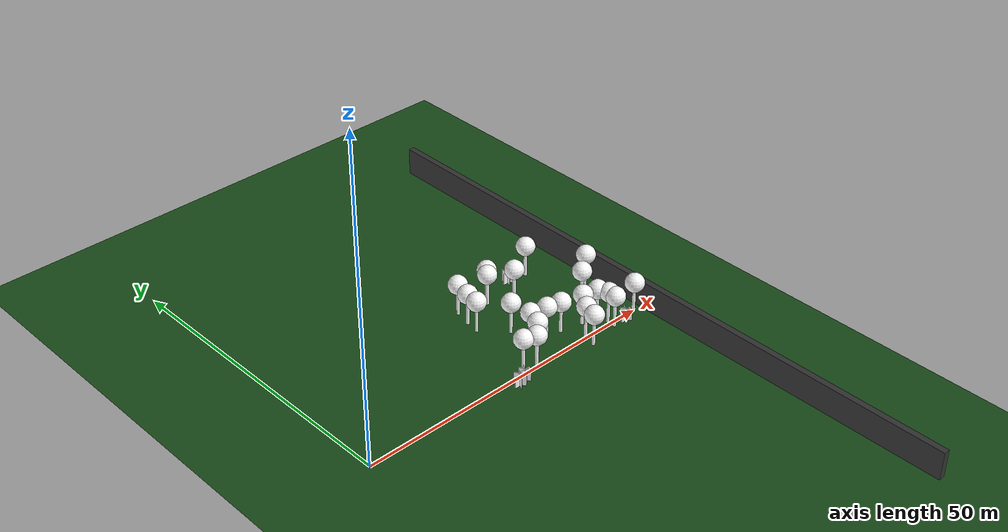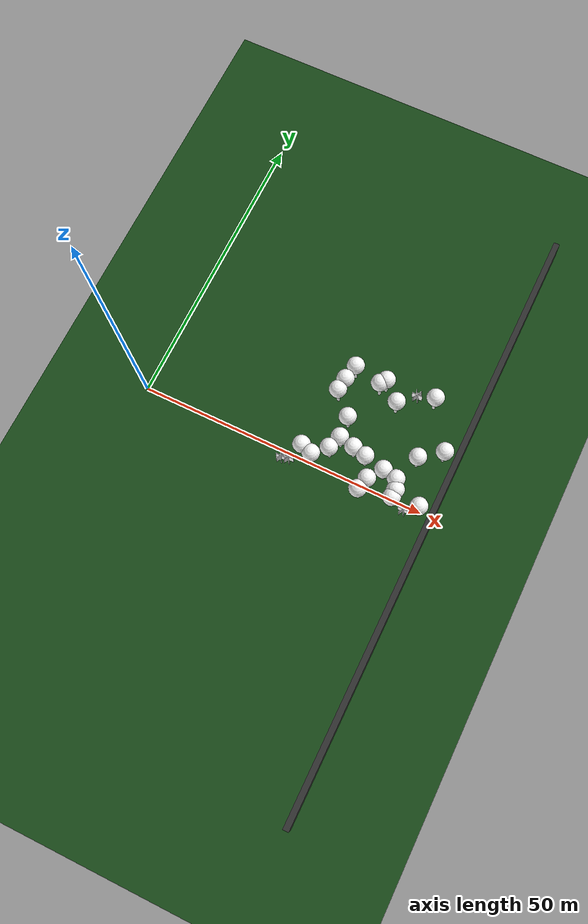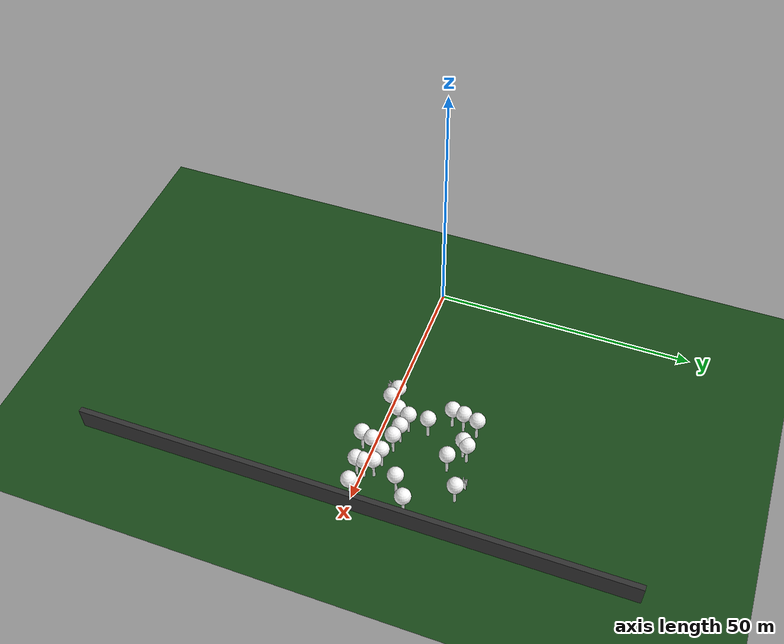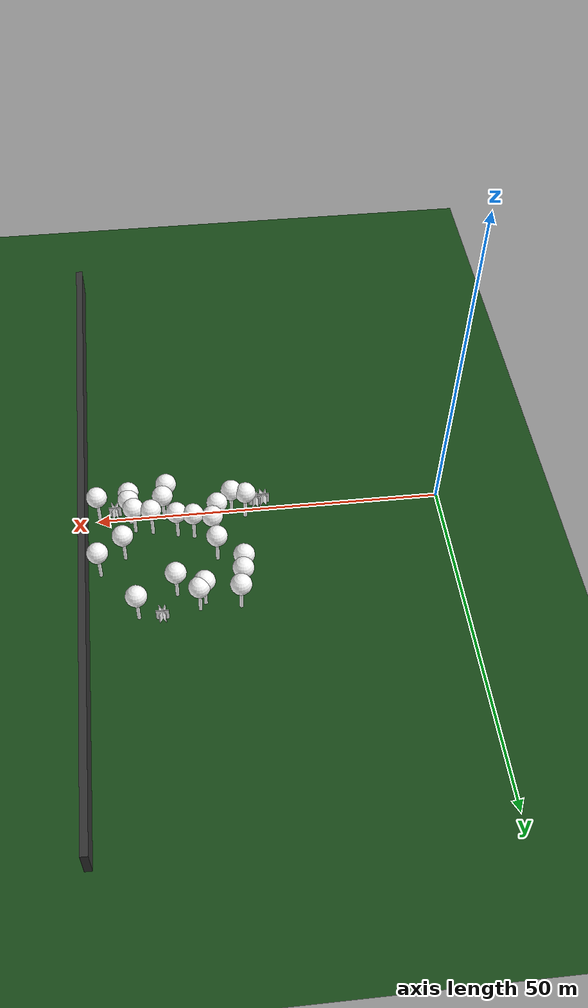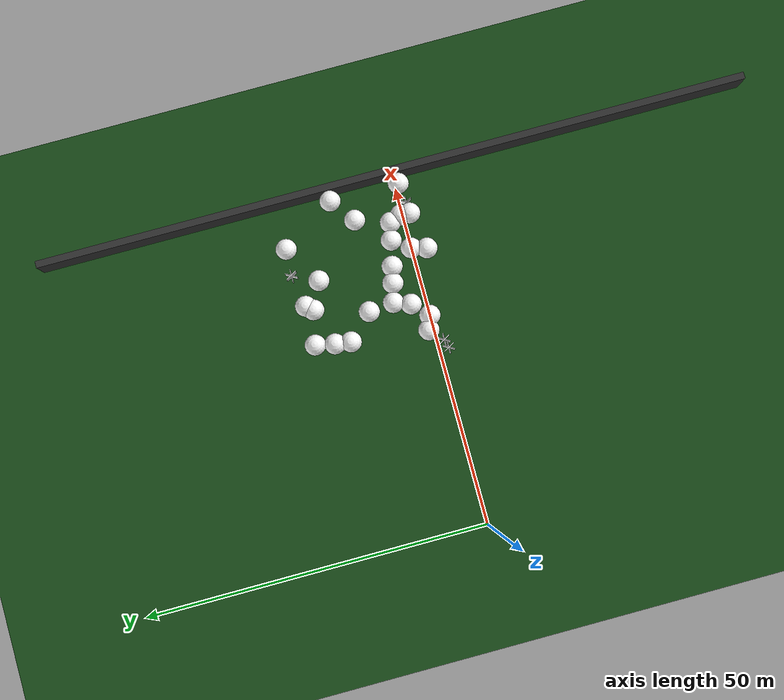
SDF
<sdf version="1.8">
 <world name="forest_world">
  <model name="fire_4">
   <pose>25.66 -1.31 1.00 0 0 0.00</pose>
   <static>true</static>
   <link name="fire_link">
    <visual name="fire_4_fire_main_0">
     <geometry><box><size>1.80 0.10 2.00</size></box></geometry>
     <material>
      <ambient>0.7 0.35 0.0 1</ambient>
      <diffuse>1 1 1 1</diffuse>
      <specular>0 0 0 1</specular>
      <emissive>0 0 0 1</emissive>
      <pbr>
       <metal><albedo_map>textures/fire.png</albedo_map><metalness>0.0</metalness><roughness>0.6</roughness></metal>
      </pbr>
     </material>
     <transparency>0.0</transparency>
     <cast_shadows>false</cast_shadows>
    </visual>
    <visual name="fire_4_fire_60_1">
     <pose>0.00 0.00 0.10 0 0 1.05</pose>
     <geometry><box><size>1.80 0.10 2.00</size></box></geometry>
     <material>
      <ambient>0.7 0.35 0.0 1</ambient>
      <diffuse>1 1 1 1</diffuse>
      <specular>0 0 0 1</specular>
      <emissive>0 0 0 1</emissive>
      <pbr>
       <metal><albedo_map>textures/fire.png</albedo_map><metalness>0.0</metalness><roughness>0.6</roughness></metal>
      </pbr>
     </material>
     <transparency>0.0</transparency>
     <cast_shadows>false</cast_shadows>
    </visual>
    <visual name="fire_4_fire_120_2">
     <pose>0.00 0.00 0.20 0 0 2.09</pose>
     <geometry><box><size>1.80 0.10 2.00</size></box></geometry>
     <material>
      <ambient>0.7 0.35 0.0 1</ambient>
      <diffuse>1 1 1 1</diffuse>
      <specular>0 0 0 1</specular>
      <emissive>0 0 0 1</emissive>
      <pbr>
       <metal><albedo_map>textures/fire.png</albedo_map><metalness>0.0</metalness><roughness>0.6</roughness></metal>
      </pbr>
     </material>
     <transparency>0.0</transparency>
     <cast_shadows>false</cast_shadows>
    </visual>
    <light type="point" name="fire_4_light_0">
     <pose>0.40 0.00 0.50 0 0 0</pose>
     <diffuse>1.0 0.7 0.3 1</diffuse>
     <specular>1.0 0.8 0.3 1</specular>
     <intensity>2</intensity>
     <attenuation>
      <range>2</range>
      <constant>0.1</constant>
      <linear>0.05</linear>
      <quadratic>0.02</quadratic>
     </attenuation>
     <cast_shadows>false</cast_shadows>
    </light>
    <light type="point" name="fire_4_light_1">
     <pose>-0.20 0.35 0.50 0 0 0</pose>
     <diffuse>1.0 0.7 0.3 1</diffuse>
     <specular>1.0 0.8 0.3 1</specular>
     <intensity>2</intensity>
     <attenuation>
      <range>2</range>
      <constant>0.1</constant>
      <linear>0.05</linear>
      <quadratic>0.02</quadratic>
     </attenuation>
     <cast_shadows>false</cast_shadows>
    </light>
    <light type="point" name="fire_4_light_2">
     <pose>-0.20 -0.35 0.50 0 0 0</pose>
     <diffuse>1.0 0.7 0.3 1</diffuse>
     <specular>1.0 0.8 0.3 1</specular>
     <intensity>2</intensity>
     <attenuation>
      <range>2</range>
      <constant>0.1</constant>
      <linear>0.05</linear>
      <quadratic>0.02</quadratic>
     </attenuation>
     <cast_shadows>false</cast_shadows>
    </light>
   </link>
   <plugin filename="libignition-gazebo-pose-publisher-system.so" name="ignition::gazebo::systems::PosePublisher">
    <frame_id>world</frame_id>
    <publish_link_pose>true</publish_link_pose>
    <use_pose_vector_msg>true</use_pose_vector_msg>
    <static_publisher>true</static_publisher>
    <static_update_frequency>1</static_update_frequency>
   </plugin>
  </model>
  <model name="fire_16">
   <pose>41.40 17.68 1.00 0 0 0.00</pose>
   <static>true</static>
   <link name="fire_link">
    <visual name="fire_16_fire_main_0">
     <geometry><box><size>1.80 0.10 2.00</size></box></geometry>
     <material>
      <ambient>0.7 0.35 0.0 1</ambient>
      <diffuse>1 1 1 1</diffuse>
      <specular>0 0 0 1</specular>
      <emissive>0 0 0 1</emissive>
      <pbr>
       <metal><albedo_map>textures/fire.png</albedo_map><metalness>0.0</metalness><roughness>0.6</roughness></metal>
      </pbr>
     </material>
     <transparency>0.0</transparency>
     <cast_shadows>false</cast_shadows>
    </visual>
    <visual name="fire_16_fire_60_1">
     <pose>0.00 0.00 0.10 0 0 1.05</pose>
     <geometry><box><size>1.80 0.10 2.00</size></box></geometry>
     <material>
      <ambient>0.7 0.35 0.0 1</ambient>
      <diffuse>1 1 1 1</diffuse>
      <specular>0 0 0 1</specular>
      <emissive>0 0 0 1</emissive>
      <pbr>
       <metal><albedo_map>textures/fire.png</albedo_map><metalness>0.0</metalness><roughness>0.6</roughness></metal>
      </pbr>
     </material>
     <transparency>0.0</transparency>
     <cast_shadows>false</cast_shadows>
    </visual>
    <visual name="fire_16_fire_120_2">
     <pose>0.00 0.00 0.20 0 0 2.09</pose>
     <geometry><box><size>1.80 0.10 2.00</size></box></geometry>
     <material>
      <ambient>0.7 0.35 0.0 1</ambient>
      <diffuse>1 1 1 1</diffuse>
      <specular>0 0 0 1</specular>
      <emissive>0 0 0 1</emissive>
      <pbr>
       <metal><albedo_map>textures/fire.png</albedo_map><metalness>0.0</metalness><roughness>0.6</roughness></metal>
      </pbr>
     </material>
     <transparency>0.0</transparency>
     <cast_shadows>false</cast_shadows>
    </visual>
    <light type="point" name="fire_16_light_0">
     <pose>0.40 0.00 0.50 0 0 0</pose>
     <diffuse>1.0 0.7 0.3 1</diffuse>
     <specular>1.0 0.8 0.3 1</specular>
     <intensity>2</intensity>
     <attenuation>
      <range>2</range>
      <constant>0.1</constant>
      <linear>0.05</linear>
      <quadratic>0.02</quadratic>
     </attenuation>
     <cast_shadows>false</cast_shadows>
    </light>
    <light type="point" name="fire_16_light_1">
     <pose>-0.20 0.35 0.50 0 0 0</pose>
     <diffuse>1.0 0.7 0.3 1</diffuse>
     <specular>1.0 0.8 0.3 1</specular>
     <intensity>2</intensity>
     <attenuation>
      <range>2</range>
      <constant>0.1</constant>
      <linear>0.05</linear>
      <quadratic>0.02</quadratic>
     </attenuation>
     <cast_shadows>false</cast_shadows>
    </light>
    <light type="point" name="fire_16_light_2">
     <pose>-0.20 -0.35 0.50 0 0 0</pose>
     <diffuse>1.0 0.7 0.3 1</diffuse>
     <specular>1.0 0.8 0.3 1</specular>
     <intensity>2</intensity>
     <attenuation>
      <range>2</range>
      <constant>0.1</constant>
      <linear>0.05</linear>
      <quadratic>0.02</quadratic>
     </attenuation>
     <cast_shadows>false</cast_shadows>
    </light>
   </link>
   <plugin filename="libignition-gazebo-pose-publisher-system.so" name="ignition::gazebo::systems::PosePublisher">
    <frame_id>world</frame_id>
    <publish_link_pose>true</publish_link_pose>
    <use_pose_vector_msg>true</use_pose_vector_msg>
    <static_publisher>true</static_publisher>
    <static_update_frequency>1</static_update_frequency>
   </plugin>
  </model>
  <model name="fire_36">
   <pose>47.32 -0.93 1.00 0 0 0.00</pose>
   <static>true</static>
   <link name="fire_link">
    <visual name="fire_36_fire_main_0">
     <geometry><box><size>1.80 0.10 2.00</size></box></geometry>
     <material>
      <ambient>0.7 0.35 0.0 1</ambient>
      <diffuse>1 1 1 1</diffuse>
      <specular>0 0 0 1</specular>
      <emissive>0 0 0 1</emissive>
      <pbr>
       <metal><albedo_map>textures/fire.png</albedo_map><metalness>0.0</metalness><roughness>0.6</roughness></metal>
      </pbr>
     </material>
     <transparency>0.0</transparency>
     <cast_shadows>false</cast_shadows>
    </visual>
    <visual name="fire_36_fire_60_1">
     <pose>0.00 0.00 0.10 0 0 1.05</pose>
     <geometry><box><size>1.80 0.10 2.00</size></box></geometry>
     <material>
      <ambient>0.7 0.35 0.0 1</ambient>
      <diffuse>1 1 1 1</diffuse>
      <specular>0 0 0 1</specular>
      <emissive>0 0 0 1</emissive>
      <pbr>
       <metal><albedo_map>textures/fire.png</albedo_map><metalness>0.0</metalness><roughness>0.6</roughness></metal>
      </pbr>
     </material>
     <transparency>0.0</transparency>
     <cast_shadows>false</cast_shadows>
    </visual>
    <visual name="fire_36_fire_120_2">
     <pose>0.00 0.00 0.20 0 0 2.09</pose>
     <geometry><box><size>1.80 0.10 2.00</size></box></geometry>
     <material>
      <ambient>0.7 0.35 0.0 1</ambient>
      <diffuse>1 1 1 1</diffuse>
      <specular>0 0 0 1</specular>
      <emissive>0 0 0 1</emissive>
      <pbr>
       <metal><albedo_map>textures/fire.png</albedo_map><metalness>0.0</metalness><roughness>0.6</roughness></metal>
      </pbr>
     </material>
     <transparency>0.0</transparency>
     <cast_shadows>false</cast_shadows>
    </visual>
    <light type="point" name="fire_36_light_0">
     <pose>0.40 0.00 0.50 0 0 0</pose>
     <diffuse>1.0 0.7 0.3 1</diffuse>
     <specular>1.0 0.8 0.3 1</specular>
     <intensity>2</intensity>
     <attenuation>
      <range>2</range>
      <constant>0.1</constant>
      <linear>0.05</linear>
      <quadratic>0.02</quadratic>
     </attenuation>
     <cast_shadows>false</cast_shadows>
    </light>
    <light type="point" name="fire_36_light_1">
     <pose>-0.20 0.35 0.50 0 0 0</pose>
     <diffuse>1.0 0.7 0.3 1</diffuse>
     <specular>1.0 0.8 0.3 1</specular>
     <intensity>2</intensity>
     <attenuation>
      <range>2</range>
      <constant>0.1</constant>
      <linear>0.05</linear>
      <quadratic>0.02</quadratic>
     </attenuation>
     <cast_shadows>false</cast_shadows>
    </light>
    <light type="point" name="fire_36_light_2">
     <pose>-0.20 -0.35 0.50 0 0 0</pose>
     <diffuse>1.0 0.7 0.3 1</diffuse>
     <specular>1.0 0.8 0.3 1</specular>
     <intensity>2</intensity>
     <attenuation>
      <range>2</range>
      <constant>0.1</constant>
      <linear>0.05</linear>
      <quadratic>0.02</quadratic>
     </attenuation>
     <cast_shadows>false</cast_shadows>
    </light>
   </link>
   <plugin filename="libignition-gazebo-pose-publisher-system.so" name="ignition::gazebo::systems::PosePublisher">
    <frame_id>world</frame_id>
    <publish_link_pose>true</publish_link_pose>
    <use_pose_vector_msg>true</use_pose_vector_msg>
    <static_publisher>true</static_publisher>
    <static_update_frequency>1</static_update_frequency>
   </plugin>
  </model>
  <model name="fire_50">
   <pose>26.87 -0.99 1.00 0 0 0.00</pose>
   <static>true</static>
   <link name="fire_link">
    <visual name="fire_50_fire_main_0">
     <geometry><box><size>1.80 0.10 2.00</size></box></geometry>
     <material>
      <ambient>0.7 0.35 0.0 1</ambient>
      <diffuse>1 1 1 1</diffuse>
      <specular>0 0 0 1</specular>
      <emissive>0 0 0 1</emissive>
      <pbr>
       <metal><albedo_map>textures/fire.png</albedo_map><metalness>0.0</metalness><roughness>0.6</roughness></metal>
      </pbr>
     </material>
     <transparency>0.0</transparency>
     <cast_shadows>false</cast_shadows>
    </visual>
    <visual name="fire_50_fire_60_1">
     <pose>0.00 0.00 0.10 0 0 1.05</pose>
     <geometry><box><size>1.80 0.10 2.00</size></box></geometry>
     <material>
      <ambient>0.7 0.35 0.0 1</ambient>
      <diffuse>1 1 1 1</diffuse>
      <specular>0 0 0 1</specular>
      <emissive>0 0 0 1</emissive>
      <pbr>
       <metal><albedo_map>textures/fire.png</albedo_map><metalness>0.0</metalness><roughness>0.6</roughness></metal>
      </pbr>
     </material>
     <transparency>0.0</transparency>
     <cast_shadows>false</cast_shadows>
    </visual>
    <visual name="fire_50_fire_120_2">
     <pose>0.00 0.00 0.20 0 0 2.09</pose>
     <geometry><box><size>1.80 0.10 2.00</size></box></geometry>
     <material>
      <ambient>0.7 0.35 0.0 1</ambient>
      <diffuse>1 1 1 1</diffuse>
      <specular>0 0 0 1</specular>
      <emissive>0 0 0 1</emissive>
      <pbr>
       <metal><albedo_map>textures/fire.png</albedo_map><metalness>0.0</metalness><roughness>0.6</roughness></metal>
      </pbr>
     </material>
     <transparency>0.0</transparency>
     <cast_shadows>false</cast_shadows>
    </visual>
    <light type="point" name="fire_50_light_0">
     <pose>0.40 0.00 0.50 0 0 0</pose>
     <diffuse>1.0 0.7 0.3 1</diffuse>
     <specular>1.0 0.8 0.3 1</specular>
     <intensity>2</intensity>
     <attenuation>
      <range>2</range>
      <constant>0.1</constant>
      <linear>0.05</linear>
      <quadratic>0.02</quadratic>
     </attenuation>
     <cast_shadows>false</cast_shadows>
    </light>
    <light type="point" name="fire_50_light_1">
     <pose>-0.20 0.35 0.50 0 0 0</pose>
     <diffuse>1.0 0.7 0.3 1</diffuse>
     <specular>1.0 0.8 0.3 1</specular>
     <intensity>2</intensity>
     <attenuation>
      <range>2</range>
      <constant>0.1</constant>
      <linear>0.05</linear>
      <quadratic>0.02</quadratic>
     </attenuation>
     <cast_shadows>false</cast_shadows>
    </light>
    <light type="point" name="fire_50_light_2">
     <pose>-0.20 -0.35 0.50 0 0 0</pose>
     <diffuse>1.0 0.7 0.3 1</diffuse>
     <specular>1.0 0.8 0.3 1</specular>
     <intensity>2</intensity>
     <attenuation>
      <range>2</range>
      <constant>0.1</constant>
      <linear>0.05</linear>
      <quadratic>0.02</quadratic>
     </attenuation>
     <cast_shadows>false</cast_shadows>
    </light>
   </link>
   <plugin filename="libignition-gazebo-pose-publisher-system.so" name="ignition::gazebo::systems::PosePublisher">
    <frame_id>world</frame_id>
    <publish_link_pose>true</publish_link_pose>
    <use_pose_vector_msg>true</use_pose_vector_msg>
    <static_publisher>true</static_publisher>
    <static_update_frequency>1</static_update_frequency>
   </plugin>
  </model>
  <model name="tree_simple499">
   <static>1</static>
   <link name="link">
    <pose>0 0 0.1 0 -0 0</pose>
    <collision name="collision_trunk">
     <pose>0 0 2 0 -0 0</pose>
     <geometry><cylinder><radius>0.25</radius><length>4</length></cylinder></geometry>
    </collision>
    <collision name="collision_treetop">
     <pose>0 0 5.2 0 -0 0</pose>
     <geometry><sphere><radius>1.5</radius></sphere></geometry>
    </collision>
    <visual name="trunk">
     <pose>0 0 2 0 -0 0</pose>
     <geometry><cylinder><radius>0.25</radius><length>4</length></cylinder></geometry>
     <material>
      <ambient>0.5 0.5 0.5 1</ambient>
      <diffuse>1.0 1.0 1.0 1</diffuse>
      <specular>0.0 0.0 0.0 1</specular>
      <pbr>
       <metal>
        <albedo_map>../worlds/textures/tree_simple_trunk.jpg</albedo_map>
        <metalness>0.0</metalness>
        <roughness>0.8</roughness>
       </metal>
      </pbr>
     </material>
    </visual>
    <visual name="treetop">
     <pose>0 0 5.2 0 -0 0</pose>
     <geometry><sphere><radius>1.5</radius></sphere></geometry>
     <material>
      <ambient>0.5 0.5 0.5 1</ambient>
      <diffuse>1.0 1.0 1.0 1</diffuse>
      <specular>0.0 0.0 0.0 1</specular>
      <pbr>
       <metal>
        <albedo_map>../worlds/textures/tree_simple_treetop.jpg</albedo_map>
        <metalness>0.0</metalness>
        <roughness>0.9</roughness>
       </metal>
      </pbr>
     </material>
    </visual>
   </link>
   <pose>49.5772894431 -0.301033806291 0 0 -0 0</pose>
  </model>
  <model name="tree_simple490">
   <static>1</static>
   <link name="link">
    <pose>0 0 0.1 0 -0 0</pose>
    <collision name="collision_trunk">
     <pose>0 0 2 0 -0 0</pose>
     <geometry><cylinder><radius>0.25</radius><length>4</length></cylinder></geometry>
    </collision>
    <collision name="collision_treetop">
     <pose>0 0 5.2 0 -0 0</pose>
     <geometry><sphere><radius>1.5</radius></sphere></geometry>
    </collision>
    <visual name="trunk">
     <pose>0 0 2 0 -0 0</pose>
     <geometry><cylinder><radius>0.25</radius><length>4</length></cylinder></geometry>
     <material>
      <ambient>0.5 0.5 0.5 1</ambient>
      <diffuse>1.0 1.0 1.0 1</diffuse>
      <specular>0.0 0.0 0.0 1</specular>
      <pbr>
       <metal>
        <albedo_map>../worlds/textures/tree_simple_trunk.jpg</albedo_map>
        <metalness>0.0</metalness>
        <roughness>0.8</roughness>
       </metal>
      </pbr>
     </material>
    </visual>
    <visual name="treetop">
     <pose>0 0 5.2 0 -0 0</pose>
     <geometry><sphere><radius>1.5</radius></sphere></geometry>
     <material>
      <ambient>0.5 0.5 0.5 1</ambient>
      <diffuse>1.0 1.0 1.0 1</diffuse>
      <specular>0.0 0.0 0.0 1</specular>
      <pbr>
       <metal>
        <albedo_map>../worlds/textures/tree_simple_treetop.jpg</albedo_map>
        <metalness>0.0</metalness>
        <roughness>0.9</roughness>
       </metal>
      </pbr>
     </material>
    </visual>
   </link>
   <pose>28.486302093 0.994684244644 0 0 -0 0</pose>
  </model>
  <model name="tree_simple487">
   <static>1</static>
   <link name="link">
    <pose>0 0 0.1 0 -0 0</pose>
    <collision name="collision_trunk">
     <pose>0 0 2 0 -0 0</pose>
     <geometry><cylinder><radius>0.25</radius><length>4</length></cylinder></geometry>
    </collision>
    <collision name="collision_treetop">
     <pose>0 0 5.2 0 -0 0</pose>
     <geometry><sphere><radius>1.5</radius></sphere></geometry>
    </collision>
    <visual name="trunk">
     <pose>0 0 2 0 -0 0</pose>
     <geometry><cylinder><radius>0.25</radius><length>4</length></cylinder></geometry>
     <material>
      <ambient>0.5 0.5 0.5 1</ambient>
      <diffuse>1.0 1.0 1.0 1</diffuse>
      <specular>0.0 0.0 0.0 1</specular>
      <pbr>
       <metal>
        <albedo_map>../worlds/textures/tree_simple_trunk.jpg</albedo_map>
        <metalness>0.0</metalness>
        <roughness>0.8</roughness>
       </metal>
      </pbr>
     </material>
    </visual>
    <visual name="treetop">
     <pose>0 0 5.2 0 -0 0</pose>
     <geometry><sphere><radius>1.5</radius></sphere></geometry>
     <material>
      <ambient>0.5 0.5 0.5 1</ambient>
      <diffuse>1.0 1.0 1.0 1</diffuse>
      <specular>0.0 0.0 0.0 1</specular>
      <pbr>
       <metal>
        <albedo_map>../worlds/textures/tree_simple_treetop.jpg</albedo_map>
        <metalness>0.0</metalness>
        <roughness>0.9</roughness>
       </metal>
      </pbr>
     </material>
    </visual>
   </link>
   <pose>33.1280168764 8.35331864597 0 0 -0 0</pose>
  </model>
  <model name="tree_simple485">
   <static>1</static>
   <link name="link">
    <pose>0 0 0.1 0 -0 0</pose>
    <collision name="collision_trunk">
     <pose>0 0 2 0 -0 0</pose>
     <geometry><cylinder><radius>0.25</radius><length>4</length></cylinder></geometry>
    </collision>
    <collision name="collision_treetop">
     <pose>0 0 5.2 0 -0 0</pose>
     <geometry><sphere><radius>1.5</radius></sphere></geometry>
    </collision>
    <visual name="trunk">
     <pose>0 0 2 0 -0 0</pose>
     <geometry><cylinder><radius>0.25</radius><length>4</length></cylinder></geometry>
     <material>
      <ambient>0.5 0.5 0.5 1</ambient>
      <diffuse>1.0 1.0 1.0 1</diffuse>
      <specular>0.0 0.0 0.0 1</specular>
      <pbr>
       <metal>
        <albedo_map>../worlds/textures/tree_simple_trunk.jpg</albedo_map>
        <metalness>0.0</metalness>
        <roughness>0.8</roughness>
       </metal>
      </pbr>
     </material>
    </visual>
    <visual name="treetop">
     <pose>0 0 5.2 0 -0 0</pose>
     <geometry><sphere><radius>1.5</radius></sphere></geometry>
     <material>
      <ambient>0.5 0.5 0.5 1</ambient>
      <diffuse>1.0 1.0 1.0 1</diffuse>
      <specular>0.0 0.0 0.0 1</specular>
      <pbr>
       <metal>
        <albedo_map>../worlds/textures/tree_simple_treetop.jpg</albedo_map>
        <metalness>0.0</metalness>
        <roughness>0.9</roughness>
       </metal>
      </pbr>
     </material>
    </visual>
   </link>
   <pose>38.4673421664 3.60529435805 0 0 -0 0</pose>
  </model>
  <model name="tree_simple378">
   <static>1</static>
   <link name="link">
    <pose>0 0 0.1 0 -0 0</pose>
    <collision name="collision_trunk">
     <pose>0 0 2 0 -0 0</pose>
     <geometry><cylinder><radius>0.25</radius><length>4</length></cylinder></geometry>
    </collision>
    <collision name="collision_treetop">
     <pose>0 0 5.2 0 -0 0</pose>
     <geometry><sphere><radius>1.5</radius></sphere></geometry>
    </collision>
    <visual name="trunk">
     <pose>0 0 2 0 -0 0</pose>
     <geometry><cylinder><radius>0.25</radius><length>4</length></cylinder></geometry>
     <material>
      <ambient>0.5 0.5 0.5 1</ambient>
      <diffuse>1.0 1.0 1.0 1</diffuse>
      <specular>0.0 0.0 0.0 1</specular>
      <pbr>
       <metal>
        <albedo_map>../worlds/textures/tree_simple_trunk.jpg</albedo_map>
        <metalness>0.0</metalness>
        <roughness>0.8</roughness>
       </metal>
      </pbr>
     </material>
    </visual>
    <visual name="treetop">
     <pose>0 0 5.2 0 -0 0</pose>
     <geometry><sphere><radius>1.5</radius></sphere></geometry>
     <material>
      <ambient>0.5 0.5 0.5 1</ambient>
      <diffuse>1.0 1.0 1.0 1</diffuse>
      <specular>0.0 0.0 0.0 1</specular>
      <pbr>
       <metal>
        <albedo_map>../worlds/textures/tree_simple_treetop.jpg</albedo_map>
        <metalness>0.0</metalness>
        <roughness>0.9</roughness>
       </metal>
      </pbr>
     </material>
    </visual>
   </link>
   <pose>45.079812121 -0.754391736344 0 0 -0 0</pose>
  </model>
  <model name="tree_simple363">
   <static>1</static>
   <link name="link">
    <pose>0 0 0.1 0 -0 0</pose>
    <collision name="collision_trunk">
     <pose>0 0 2 0 -0 0</pose>
     <geometry><cylinder><radius>0.25</radius><length>4</length></cylinder></geometry>
    </collision>
    <collision name="collision_treetop">
     <pose>0 0 5.2 0 -0 0</pose>
     <geometry><sphere><radius>1.5</radius></sphere></geometry>
    </collision>
    <visual name="trunk">
     <pose>0 0 2 0 -0 0</pose>
     <geometry><cylinder><radius>0.25</radius><length>4</length></cylinder></geometry>
     <material>
      <ambient>0.5 0.5 0.5 1</ambient>
      <diffuse>1.0 1.0 1.0 1</diffuse>
      <specular>0.0 0.0 0.0 1</specular>
      <pbr>
       <metal>
        <albedo_map>../worlds/textures/tree_simple_trunk.jpg</albedo_map>
        <metalness>0.0</metalness>
        <roughness>0.8</roughness>
       </metal>
      </pbr>
     </material>
    </visual>
    <visual name="treetop">
     <pose>0 0 5.2 0 -0 0</pose>
     <geometry><sphere><radius>1.5</radius></sphere></geometry>
     <material>
      <ambient>0.5 0.5 0.5 1</ambient>
      <diffuse>1.0 1.0 1.0 1</diffuse>
      <specular>0.0 0.0 0.0 1</specular>
      <pbr>
       <metal>
        <albedo_map>../worlds/textures/tree_simple_treetop.jpg</albedo_map>
        <metalness>0.0</metalness>
        <roughness>0.9</roughness>
       </metal>
      </pbr>
     </material>
    </visual>
   </link>
   <pose>45.144398785 0.58220424318 0 0 -0 0</pose>
  </model>
  <model name="tree_simple354">
   <static>1</static>
   <link name="link">
    <pose>0 0 0.1 0 -0 0</pose>
    <collision name="collision_trunk">
     <pose>0 0 2 0 -0 0</pose>
     <geometry><cylinder><radius>0.25</radius><length>4</length></cylinder></geometry>
    </collision>
    <collision name="collision_treetop">
     <pose>0 0 5.2 0 -0 0</pose>
     <geometry><sphere><radius>1.5</radius></sphere></geometry>
    </collision>
    <visual name="trunk">
     <pose>0 0 2 0 -0 0</pose>
     <geometry><cylinder><radius>0.25</radius><length>4</length></cylinder></geometry>
     <material>
      <ambient>0.5 0.5 0.5 1</ambient>
      <diffuse>1.0 1.0 1.0 1</diffuse>
      <specular>0.0 0.0 0.0 1</specular>
      <pbr>
       <metal>
        <albedo_map>../worlds/textures/tree_simple_trunk.jpg</albedo_map>
        <metalness>0.0</metalness>
        <roughness>0.8</roughness>
       </metal>
      </pbr>
     </material>
    </visual>
    <visual name="treetop">
     <pose>0 0 5.2 0 -0 0</pose>
     <geometry><sphere><radius>1.5</radius></sphere></geometry>
     <material>
      <ambient>0.5 0.5 0.5 1</ambient>
      <diffuse>1.0 1.0 1.0 1</diffuse>
      <specular>0.0 0.0 0.0 1</specular>
      <pbr>
       <metal>
        <albedo_map>../worlds/textures/tree_simple_treetop.jpg</albedo_map>
        <metalness>0.0</metalness>
        <roughness>0.9</roughness>
       </metal>
      </pbr>
     </material>
    </visual>
   </link>
   <pose>32.6407591413 2.42607799047 0 0 -0 0</pose>
  </model>
  <model name="tree_simple297">
   <static>1</static>
   <link name="link">
    <pose>0 0 0.1 0 -0 0</pose>
    <collision name="collision_trunk">
     <pose>0 0 2 0 -0 0</pose>
     <geometry><cylinder><radius>0.25</radius><length>4</length></cylinder></geometry>
    </collision>
    <collision name="collision_treetop">
     <pose>0 0 5.2 0 -0 0</pose>
     <geometry><sphere><radius>1.5</radius></sphere></geometry>
    </collision>
    <visual name="trunk">
     <pose>0 0 2 0 -0 0</pose>
     <geometry><cylinder><radius>0.25</radius><length>4</length></cylinder></geometry>
     <material>
      <ambient>0.5 0.5 0.5 1</ambient>
      <diffuse>1.0 1.0 1.0 1</diffuse>
      <specular>0.0 0.0 0.0 1</specular>
      <pbr>
       <metal>
        <albedo_map>../worlds/textures/tree_simple_trunk.jpg</albedo_map>
        <metalness>0.0</metalness>
        <roughness>0.8</roughness>
       </metal>
      </pbr>
     </material>
    </visual>
    <visual name="treetop">
     <pose>0 0 5.2 0 -0 0</pose>
     <geometry><sphere><radius>1.5</radius></sphere></geometry>
     <material>
      <ambient>0.5 0.5 0.5 1</ambient>
      <diffuse>1.0 1.0 1.0 1</diffuse>
      <specular>0.0 0.0 0.0 1</specular>
      <pbr>
       <metal>
        <albedo_map>../worlds/textures/tree_simple_treetop.jpg</albedo_map>
        <metalness>0.0</metalness>
        <roughness>0.9</roughness>
       </metal>
      </pbr>
     </material>
    </visual>
   </link>
   <pose>30.5775161842 16.8175844191 0 0 -0 0</pose>
  </model>
  <model name="tree_simple296">
   <static>1</static>
   <link name="link">
    <pose>0 0 0.1 0 -0 0</pose>
    <collision name="collision_trunk">
     <pose>0 0 2 0 -0 0</pose>
     <geometry><cylinder><radius>0.25</radius><length>4</length></cylinder></geometry>
    </collision>
    <collision name="collision_treetop">
     <pose>0 0 5.2 0 -0 0</pose>
     <geometry><sphere><radius>1.5</radius></sphere></geometry>
    </collision>
    <visual name="trunk">
     <pose>0 0 2 0 -0 0</pose>
     <geometry><cylinder><radius>0.25</radius><length>4</length></cylinder></geometry>
     <material>
      <ambient>0.5 0.5 0.5 1</ambient>
      <diffuse>1.0 1.0 1.0 1</diffuse>
      <specular>0.0 0.0 0.0 1</specular>
      <pbr>
       <metal>
        <albedo_map>../worlds/textures/tree_simple_trunk.jpg</albedo_map>
        <metalness>0.0</metalness>
        <roughness>0.8</roughness>
       </metal>
      </pbr>
     </material>
    </visual>
    <visual name="treetop">
     <pose>0 0 5.2 0 -0 0</pose>
     <geometry><sphere><radius>1.5</radius></sphere></geometry>
     <material>
      <ambient>0.5 0.5 0.5 1</ambient>
      <diffuse>1.0 1.0 1.0 1</diffuse>
      <specular>0.0 0.0 0.0 1</specular>
      <pbr>
       <metal>
        <albedo_map>../worlds/textures/tree_simple_treetop.jpg</albedo_map>
        <metalness>0.0</metalness>
        <roughness>0.9</roughness>
       </metal>
      </pbr>
     </material>
    </visual>
   </link>
   <pose>44.6267245304 17.3019041373 0 0 -0 0</pose>
  </model>
  <model name="tree_simple283">
   <static>1</static>
   <link name="link">
    <pose>0 0 0.1 0 -0 0</pose>
    <collision name="collision_trunk">
     <pose>0 0 2 0 -0 0</pose>
     <geometry><cylinder><radius>0.25</radius><length>4</length></cylinder></geometry>
    </collision>
    <collision name="collision_treetop">
     <pose>0 0 5.2 0 -0 0</pose>
     <geometry><sphere><radius>1.5</radius></sphere></geometry>
    </collision>
    <visual name="trunk">
     <pose>0 0 2 0 -0 0</pose>
     <geometry><cylinder><radius>0.25</radius><length>4</length></cylinder></geometry>
     <material>
      <ambient>0.5 0.5 0.5 1</ambient>
      <diffuse>1.0 1.0 1.0 1</diffuse>
      <specular>0.0 0.0 0.0 1</specular>
      <pbr>
       <metal>
        <albedo_map>../worlds/textures/tree_simple_trunk.jpg</albedo_map>
        <metalness>0.0</metalness>
        <roughness>0.8</roughness>
       </metal>
      </pbr>
     </material>
    </visual>
    <visual name="treetop">
     <pose>0 0 5.2 0 -0 0</pose>
     <geometry><sphere><radius>1.5</radius></sphere></geometry>
     <material>
      <ambient>0.5 0.5 0.5 1</ambient>
      <diffuse>1.0 1.0 1.0 1</diffuse>
      <specular>0.0 0.0 0.0 1</specular>
      <pbr>
       <metal>
        <albedo_map>../worlds/textures/tree_simple_treetop.jpg</albedo_map>
        <metalness>0.0</metalness>
        <roughness>0.9</roughness>
       </metal>
      </pbr>
     </material>
    </visual>
   </link>
   <pose>39.1815186035 14.0237047255 0 0 -0 0</pose>
  </model>
  <model name="tree_simple277">
   <static>1</static>
   <link name="link">
    <pose>0 0 0.1 0 -0 0</pose>
    <collision name="collision_trunk">
     <pose>0 0 2 0 -0 0</pose>
     <geometry><cylinder><radius>0.25</radius><length>4</length></cylinder></geometry>
    </collision>
    <collision name="collision_treetop">
     <pose>0 0 5.2 0 -0 0</pose>
     <geometry><sphere><radius>1.5</radius></sphere></geometry>
    </collision>
    <visual name="trunk">
     <pose>0 0 2 0 -0 0</pose>
     <geometry><cylinder><radius>0.25</radius><length>4</length></cylinder></geometry>
     <material>
      <ambient>0.5 0.5 0.5 1</ambient>
      <diffuse>1.0 1.0 1.0 1</diffuse>
      <specular>0.0 0.0 0.0 1</specular>
      <pbr>
       <metal>
        <albedo_map>../worlds/textures/tree_simple_trunk.jpg</albedo_map>
        <metalness>0.0</metalness>
        <roughness>0.8</roughness>
       </metal>
      </pbr>
     </material>
    </visual>
    <visual name="treetop">
     <pose>0 0 5.2 0 -0 0</pose>
     <geometry><sphere><radius>1.5</radius></sphere></geometry>
     <material>
      <ambient>0.5 0.5 0.5 1</ambient>
      <diffuse>1.0 1.0 1.0 1</diffuse>
      <specular>0.0 0.0 0.0 1</specular>
      <pbr>
       <metal>
        <albedo_map>../worlds/textures/tree_simple_treetop.jpg</albedo_map>
        <metalness>0.0</metalness>
        <roughness>0.9</roughness>
       </metal>
      </pbr>
     </material>
    </visual>
   </link>
   <pose>29.6986775877 11.8803123921 0 0 -0 0</pose>
  </model>
  <model name="tree_simple274">
   <static>1</static>
   <link name="link">
    <pose>0 0 0.1 0 -0 0</pose>
    <collision name="collision_trunk">
     <pose>0 0 2 0 -0 0</pose>
     <geometry><cylinder><radius>0.25</radius><length>4</length></cylinder></geometry>
    </collision>
    <collision name="collision_treetop">
     <pose>0 0 5.2 0 -0 0</pose>
     <geometry><sphere><radius>1.5</radius></sphere></geometry>
    </collision>
    <visual name="trunk">
     <pose>0 0 2 0 -0 0</pose>
     <geometry><cylinder><radius>0.25</radius><length>4</length></cylinder></geometry>
     <material>
      <ambient>0.5 0.5 0.5 1</ambient>
      <diffuse>1.0 1.0 1.0 1</diffuse>
      <specular>0.0 0.0 0.0 1</specular>
      <pbr>
       <metal>
        <albedo_map>../worlds/textures/tree_simple_trunk.jpg</albedo_map>
        <metalness>0.0</metalness>
        <roughness>0.8</roughness>
       </metal>
      </pbr>
     </material>
    </visual>
    <visual name="treetop">
     <pose>0 0 5.2 0 -0 0</pose>
     <geometry><sphere><radius>1.5</radius></sphere></geometry>
     <material>
      <ambient>0.5 0.5 0.5 1</ambient>
      <diffuse>1.0 1.0 1.0 1</diffuse>
      <specular>0.0 0.0 0.0 1</specular>
      <pbr>
       <metal>
        <albedo_map>../worlds/textures/tree_simple_treetop.jpg</albedo_map>
        <metalness>0.0</metalness>
        <roughness>0.9</roughness>
       </metal>
      </pbr>
     </material>
    </visual>
   </link>
   <pose>36.1444858675 4.12221392714 0 0 -0 0</pose>
  </model>
  <model name="tree_simple270">
   <static>1</static>
   <link name="link">
    <pose>0 0 0.1 0 -0 0</pose>
    <collision name="collision_trunk">
     <pose>0 0 2 0 -0 0</pose>
     <geometry><cylinder><radius>0.25</radius><length>4</length></cylinder></geometry>
    </collision>
    <collision name="collision_treetop">
     <pose>0 0 5.2 0 -0 0</pose>
     <geometry><sphere><radius>1.5</radius></sphere></geometry>
    </collision>
    <visual name="trunk">
     <pose>0 0 2 0 -0 0</pose>
     <geometry><cylinder><radius>0.25</radius><length>4</length></cylinder></geometry>
     <material>
      <ambient>0.5 0.5 0.5 1</ambient>
      <diffuse>1.0 1.0 1.0 1</diffuse>
      <specular>0.0 0.0 0.0 1</specular>
      <pbr>
       <metal>
        <albedo_map>../worlds/textures/tree_simple_trunk.jpg</albedo_map>
        <metalness>0.0</metalness>
        <roughness>0.8</roughness>
       </metal>
      </pbr>
     </material>
    </visual>
    <visual name="treetop">
     <pose>0 0 5.2 0 -0 0</pose>
     <geometry><sphere><radius>1.5</radius></sphere></geometry>
     <material>
      <ambient>0.5 0.5 0.5 1</ambient>
      <diffuse>1.0 1.0 1.0 1</diffuse>
      <specular>0.0 0.0 0.0 1</specular>
      <pbr>
       <metal>
        <albedo_map>../worlds/textures/tree_simple_treetop.jpg</albedo_map>
        <metalness>0.0</metalness>
        <roughness>0.9</roughness>
       </metal>
      </pbr>
     </material>
    </visual>
   </link>
   <pose>36.1848743211 16.7262379366 0 0 -0 0</pose>
  </model>
  <model name="tree_simple151">
   <static>1</static>
   <link name="link">
    <pose>0 0 0.1 0 -0 0</pose>
    <collision name="collision_trunk">
     <pose>0 0 2 0 -0 0</pose>
     <geometry><cylinder><radius>0.25</radius><length>4</length></cylinder></geometry>
    </collision>
    <collision name="collision_treetop">
     <pose>0 0 5.2 0 -0 0</pose>
     <geometry><sphere><radius>1.5</radius></sphere></geometry>
    </collision>
    <visual name="trunk">
     <pose>0 0 2 0 -0 0</pose>
     <geometry><cylinder><radius>0.25</radius><length>4</length></cylinder></geometry>
     <material>
      <ambient>0.5 0.5 0.5 1</ambient>
      <diffuse>1.0 1.0 1.0 1</diffuse>
      <specular>0.0 0.0 0.0 1</specular>
      <pbr>
       <metal>
        <albedo_map>../worlds/textures/tree_simple_trunk.jpg</albedo_map>
        <metalness>0.0</metalness>
        <roughness>0.8</roughness>
       </metal>
      </pbr>
     </material>
    </visual>
    <visual name="treetop">
     <pose>0 0 5.2 0 -0 0</pose>
     <geometry><sphere><radius>1.5</radius></sphere></geometry>
     <material>
      <ambient>0.5 0.5 0.5 1</ambient>
      <diffuse>1.0 1.0 1.0 1</diffuse>
      <specular>0.0 0.0 0.0 1</specular>
      <pbr>
       <metal>
        <albedo_map>../worlds/textures/tree_simple_treetop.jpg</albedo_map>
        <metalness>0.0</metalness>
        <roughness>0.9</roughness>
       </metal>
      </pbr>
     </material>
    </visual>
   </link>
   <pose>44.4996407391 2.22143393779 0 0 -0 0</pose>
  </model>
  <model name="tree_simple147">
   <static>1</static>
   <link name="link">
    <pose>0 0 0.1 0 -0 0</pose>
    <collision name="collision_trunk">
     <pose>0 0 2 0 -0 0</pose>
     <geometry><cylinder><radius>0.25</radius><length>4</length></cylinder></geometry>
    </collision>
    <collision name="collision_treetop">
     <pose>0 0 5.2 0 -0 0</pose>
     <geometry><sphere><radius>1.5</radius></sphere></geometry>
    </collision>
    <visual name="trunk">
     <pose>0 0 2 0 -0 0</pose>
     <geometry><cylinder><radius>0.25</radius><length>4</length></cylinder></geometry>
     <material>
      <ambient>0.5 0.5 0.5 1</ambient>
      <diffuse>1.0 1.0 1.0 1</diffuse>
      <specular>0.0 0.0 0.0 1</specular>
      <pbr>
       <metal>
        <albedo_map>../worlds/textures/tree_simple_trunk.jpg</albedo_map>
        <metalness>0.0</metalness>
        <roughness>0.8</roughness>
       </metal>
      </pbr>
     </material>
    </visual>
    <visual name="treetop">
     <pose>0 0 5.2 0 -0 0</pose>
     <geometry><sphere><radius>1.5</radius></sphere></geometry>
     <material>
      <ambient>0.5 0.5 0.5 1</ambient>
      <diffuse>1.0 1.0 1.0 1</diffuse>
      <specular>0.0 0.0 0.0 1</specular>
      <pbr>
       <metal>
        <albedo_map>../worlds/textures/tree_simple_treetop.jpg</albedo_map>
        <metalness>0.0</metalness>
        <roughness>0.9</roughness>
       </metal>
      </pbr>
     </material>
    </visual>
   </link>
   <pose>35.3937687519 15.7697149942 0 0 -0 0</pose>
  </model>
  <model name="tree_simple125">
   <static>1</static>
   <link name="link">
    <pose>0 0 0.1 0 -0 0</pose>
    <collision name="collision_trunk">
     <pose>0 0 2 0 -0 0</pose>
     <geometry><cylinder><radius>0.25</radius><length>4</length></cylinder></geometry>
    </collision>
    <collision name="collision_treetop">
     <pose>0 0 5.2 0 -0 0</pose>
     <geometry><sphere><radius>1.5</radius></sphere></geometry>
    </collision>
    <visual name="trunk">
     <pose>0 0 2 0 -0 0</pose>
     <geometry><cylinder><radius>0.25</radius><length>4</length></cylinder></geometry>
     <material>
      <ambient>0.5 0.5 0.5 1</ambient>
      <diffuse>1.0 1.0 1.0 1</diffuse>
      <specular>0.0 0.0 0.0 1</specular>
      <pbr>
       <metal>
        <albedo_map>../worlds/textures/tree_simple_trunk.jpg</albedo_map>
        <metalness>0.0</metalness>
        <roughness>0.8</roughness>
       </metal>
      </pbr>
     </material>
    </visual>
    <visual name="treetop">
     <pose>0 0 5.2 0 -0 0</pose>
     <geometry><sphere><radius>1.5</radius></sphere></geometry>
     <material>
      <ambient>0.5 0.5 0.5 1</ambient>
      <diffuse>1.0 1.0 1.0 1</diffuse>
      <specular>0.0 0.0 0.0 1</specular>
      <pbr>
       <metal>
        <albedo_map>../worlds/textures/tree_simple_treetop.jpg</albedo_map>
        <metalness>0.0</metalness>
        <roughness>0.9</roughness>
       </metal>
      </pbr>
     </material>
    </visual>
   </link>
   <pose>49.6376718654 9.60982885919 0 0 -0 0</pose>
  </model>
  <model name="tree_simple101">
   <static>1</static>
   <link name="link">
    <pose>0 0 0.1 0 -0 0</pose>
    <collision name="collision_trunk">
     <pose>0 0 2 0 -0 0</pose>
     <geometry><cylinder><radius>0.25</radius><length>4</length></cylinder></geometry>
    </collision>
    <collision name="collision_treetop">
     <pose>0 0 5.2 0 -0 0</pose>
     <geometry><sphere><radius>1.5</radius></sphere></geometry>
    </collision>
    <visual name="trunk">
     <pose>0 0 2 0 -0 0</pose>
     <geometry><cylinder><radius>0.25</radius><length>4</length></cylinder></geometry>
     <material>
      <ambient>0.5 0.5 0.5 1</ambient>
      <diffuse>1.0 1.0 1.0 1</diffuse>
      <specular>0.0 0.0 0.0 1</specular>
      <pbr>
       <metal>
        <albedo_map>../worlds/textures/tree_simple_trunk.jpg</albedo_map>
        <metalness>0.0</metalness>
        <roughness>0.8</roughness>
       </metal>
      </pbr>
     </material>
    </visual>
    <visual name="treetop">
     <pose>0 0 5.2 0 -0 0</pose>
     <geometry><sphere><radius>1.5</radius></sphere></geometry>
     <material>
      <ambient>0.5 0.5 0.5 1</ambient>
      <diffuse>1.0 1.0 1.0 1</diffuse>
      <specular>0.0 0.0 0.0 1</specular>
      <pbr>
       <metal>
        <albedo_map>../worlds/textures/tree_simple_treetop.jpg</albedo_map>
        <metalness>0.0</metalness>
        <roughness>0.9</roughness>
       </metal>
      </pbr>
     </material>
    </visual>
   </link>
   <pose>30.4497487196 0.325840967223 0 0 -0 0</pose>
  </model>
  <model name="tree_simple88">
   <static>1</static>
   <link name="link">
    <pose>0 0 0.1 0 -0 0</pose>
    <collision name="collision_trunk">
     <pose>0 0 2 0 -0 0</pose>
     <geometry><cylinder><radius>0.25</radius><length>4</length></cylinder></geometry>
    </collision>
    <collision name="collision_treetop">
     <pose>0 0 5.2 0 -0 0</pose>
     <geometry><sphere><radius>1.5</radius></sphere></geometry>
    </collision>
    <visual name="trunk">
     <pose>0 0 2 0 -0 0</pose>
     <geometry><cylinder><radius>0.25</radius><length>4</length></cylinder></geometry>
     <material>
      <ambient>0.5 0.5 0.5 1</ambient>
      <diffuse>1.0 1.0 1.0 1</diffuse>
      <specular>0.0 0.0 0.0 1</specular>
      <pbr>
       <metal>
        <albedo_map>../worlds/textures/tree_simple_trunk.jpg</albedo_map>
        <metalness>0.0</metalness>
        <roughness>0.8</roughness>
       </metal>
      </pbr>
     </material>
    </visual>
    <visual name="treetop">
     <pose>0 0 5.2 0 -0 0</pose>
     <geometry><sphere><radius>1.5</radius></sphere></geometry>
     <material>
      <ambient>0.5 0.5 0.5 1</ambient>
      <diffuse>1.0 1.0 1.0 1</diffuse>
      <specular>0.0 0.0 0.0 1</specular>
      <pbr>
       <metal>
        <albedo_map>../worlds/textures/tree_simple_treetop.jpg</albedo_map>
        <metalness>0.0</metalness>
        <roughness>0.9</roughness>
       </metal>
      </pbr>
     </material>
    </visual>
   </link>
   <pose>30.0100540879 14.1017102657 0 0 -0 0</pose>
  </model>
  <model name="tree_simple82">
   <static>1</static>
   <link name="link">
    <pose>0 0 0.1 0 -0 0</pose>
    <collision name="collision_trunk">
     <pose>0 0 2 0 -0 0</pose>
     <geometry><cylinder><radius>0.25</radius><length>4</length></cylinder></geometry>
    </collision>
    <collision name="collision_treetop">
     <pose>0 0 5.2 0 -0 0</pose>
     <geometry><sphere><radius>1.5</radius></sphere></geometry>
    </collision>
    <visual name="trunk">
     <pose>0 0 2 0 -0 0</pose>
     <geometry><cylinder><radius>0.25</radius><length>4</length></cylinder></geometry>
     <material>
      <ambient>0.5 0.5 0.5 1</ambient>
      <diffuse>1.0 1.0 1.0 1</diffuse>
      <specular>0.0 0.0 0.0 1</specular>
      <pbr>
       <metal>
        <albedo_map>../worlds/textures/tree_simple_trunk.jpg</albedo_map>
        <metalness>0.0</metalness>
        <roughness>0.8</roughness>
       </metal>
      </pbr>
     </material>
    </visual>
    <visual name="treetop">
     <pose>0 0 5.2 0 -0 0</pose>
     <geometry><sphere><radius>1.5</radius></sphere></geometry>
     <material>
      <ambient>0.5 0.5 0.5 1</ambient>
      <diffuse>1.0 1.0 1.0 1</diffuse>
      <specular>0.0 0.0 0.0 1</specular>
      <pbr>
       <metal>
        <albedo_map>../worlds/textures/tree_simple_treetop.jpg</albedo_map>
        <metalness>0.0</metalness>
        <roughness>0.9</roughness>
       </metal>
      </pbr>
     </material>
    </visual>
   </link>
   <pose>42.0261591118 2.77520756708 0 0 -0 0</pose>
  </model>
  <model name="tree_simple54">
   <static>1</static>
   <link name="link">
    <pose>0 0 0.1 0 -0 0</pose>
    <collision name="collision_trunk">
     <pose>0 0 2 0 -0 0</pose>
     <geometry><cylinder><radius>0.25</radius><length>4</length></cylinder></geometry>
    </collision>
    <collision name="collision_treetop">
     <pose>0 0 5.2 0 -0 0</pose>
     <geometry><sphere><radius>1.5</radius></sphere></geometry>
    </collision>
    <visual name="trunk">
     <pose>0 0 2 0 -0 0</pose>
     <geometry><cylinder><radius>0.25</radius><length>4</length></cylinder></geometry>
     <material>
      <ambient>0.5 0.5 0.5 1</ambient>
      <diffuse>1.0 1.0 1.0 1</diffuse>
      <specular>0.0 0.0 0.0 1</specular>
      <pbr>
       <metal>
        <albedo_map>../worlds/textures/tree_simple_trunk.jpg</albedo_map>
        <metalness>0.0</metalness>
        <roughness>0.8</roughness>
       </metal>
      </pbr>
     </material>
    </visual>
    <visual name="treetop">
     <pose>0 0 5.2 0 -0 0</pose>
     <geometry><sphere><radius>1.5</radius></sphere></geometry>
     <material>
      <ambient>0.5 0.5 0.5 1</ambient>
      <diffuse>1.0 1.0 1.0 1</diffuse>
      <specular>0.0 0.0 0.0 1</specular>
      <pbr>
       <metal>
        <albedo_map>../worlds/textures/tree_simple_treetop.jpg</albedo_map>
        <metalness>0.0</metalness>
        <roughness>0.9</roughness>
       </metal>
      </pbr>
     </material>
    </visual>
   </link>
   <pose>40.2707740498 0.36304299765 0 0 -0 0</pose>
  </model>
  <model name="tree_simple45">
   <static>1</static>
   <link name="link">
    <pose>0 0 0.1 0 -0 0</pose>
    <collision name="collision_trunk">
     <pose>0 0 2 0 -0 0</pose>
     <geometry><cylinder><radius>0.25</radius><length>4</length></cylinder></geometry>
    </collision>
    <collision name="collision_treetop">
     <pose>0 0 5.2 0 -0 0</pose>
     <geometry><sphere><radius>1.5</radius></sphere></geometry>
    </collision>
    <visual name="trunk">
     <pose>0 0 2 0 -0 0</pose>
     <geometry><cylinder><radius>0.25</radius><length>4</length></cylinder></geometry>
     <material>
      <ambient>0.5 0.5 0.5 1</ambient>
      <diffuse>1.0 1.0 1.0 1</diffuse>
      <specular>0.0 0.0 0.0 1</specular>
      <pbr>
       <metal>
        <albedo_map>../worlds/textures/tree_simple_trunk.jpg</albedo_map>
        <metalness>0.0</metalness>
        <roughness>0.8</roughness>
       </metal>
      </pbr>
     </material>
    </visual>
    <visual name="treetop">
     <pose>0 0 5.2 0 -0 0</pose>
     <geometry><sphere><radius>1.5</radius></sphere></geometry>
     <material>
      <ambient>0.5 0.5 0.5 1</ambient>
      <diffuse>1.0 1.0 1.0 1</diffuse>
      <specular>0.0 0.0 0.0 1</specular>
      <pbr>
       <metal>
        <albedo_map>../worlds/textures/tree_simple_treetop.jpg</albedo_map>
        <metalness>0.0</metalness>
        <roughness>0.9</roughness>
       </metal>
      </pbr>
     </material>
    </visual>
   </link>
   <pose>33.4753312088 4.75995445327 0 0 -0 0</pose>
  </model>
  <model name="tree_simple19">
   <static>1</static>
   <link name="link">
    <pose>0 0 0.1 0 -0 0</pose>
    <collision name="collision_trunk">
     <pose>0 0 2 0 -0 0</pose>
     <geometry><cylinder><radius>0.25</radius><length>4</length></cylinder></geometry>
    </collision>
    <collision name="collision_treetop">
     <pose>0 0 5.2 0 -0 0</pose>
     <geometry><sphere><radius>1.5</radius></sphere></geometry>
    </collision>
    <visual name="trunk">
     <pose>0 0 2 0 -0 0</pose>
     <geometry><cylinder><radius>0.25</radius><length>4</length></cylinder></geometry>
     <material>
      <ambient>0.5 0.5 0.5 1</ambient>
      <diffuse>1.0 1.0 1.0 1</diffuse>
      <specular>0.0 0.0 0.0 1</specular>
      <pbr>
       <metal>
        <albedo_map>../worlds/textures/tree_simple_trunk.jpg</albedo_map>
        <metalness>0.0</metalness>
        <roughness>0.8</roughness>
       </metal>
      </pbr>
     </material>
    </visual>
    <visual name="treetop">
     <pose>0 0 5.2 0 -0 0</pose>
     <geometry><sphere><radius>1.5</radius></sphere></geometry>
     <material>
      <ambient>0.5 0.5 0.5 1</ambient>
      <diffuse>1.0 1.0 1.0 1</diffuse>
      <specular>0.0 0.0 0.0 1</specular>
      <pbr>
       <metal>
        <albedo_map>../worlds/textures/tree_simple_treetop.jpg</albedo_map>
        <metalness>0.0</metalness>
        <roughness>0.9</roughness>
       </metal>
      </pbr>
     </material>
    </visual>
   </link>
   <pose>39.6710404754 -1.77882210198 0 0 -0 0</pose>
  </model>
  <model name="tree_simple12">
   <static>1</static>
   <link name="link">
    <pose>0 0 0.1 0 -0 0</pose>
    <collision name="collision_trunk">
     <pose>0 0 2 0 -0 0</pose>
     <geometry><cylinder><radius>0.25</radius><length>4</length></cylinder></geometry>
    </collision>
    <collision name="collision_treetop">
     <pose>0 0 5.2 0 -0 0</pose>
     <geometry><sphere><radius>1.5</radius></sphere></geometry>
    </collision>
    <visual name="trunk">
     <pose>0 0 2 0 -0 0</pose>
     <geometry><cylinder><radius>0.25</radius><length>4</length></cylinder></geometry>
     <material>
      <ambient>0.5 0.5 0.5 1</ambient>
      <diffuse>1.0 1.0 1.0 1</diffuse>
      <specular>0.0 0.0 0.0 1</specular>
      <pbr>
       <metal>
        <albedo_map>../worlds/textures/tree_simple_trunk.jpg</albedo_map>
        <metalness>0.0</metalness>
        <roughness>0.8</roughness>
       </metal>
      </pbr>
     </material>
    </visual>
    <visual name="treetop">
     <pose>0 0 5.2 0 -0 0</pose>
     <geometry><sphere><radius>1.5</radius></sphere></geometry>
     <material>
      <ambient>0.5 0.5 0.5 1</ambient>
      <diffuse>1.0 1.0 1.0 1</diffuse>
      <specular>0.0 0.0 0.0 1</specular>
      <pbr>
       <metal>
        <albedo_map>../worlds/textures/tree_simple_treetop.jpg</albedo_map>
        <metalness>0.0</metalness>
        <roughness>0.9</roughness>
       </metal>
      </pbr>
     </material>
    </visual>
   </link>
   <pose>46.1246254141 6.97446831658 0 0 -0 0</pose>
  </model>
  <model name="ground_plane">
   <static>true</static>
   <link name="link">
    <collision name="collision">
     <geometry><mesh><uri>../worlds/textures/grass_plane.dae</uri><scale>1 1 1</scale></mesh></geometry>
     <surface><friction><ode><mu>1</mu><mu2>1</mu2></ode></friction></surface>
    </collision>
    <visual name="snow">
     <cast_shadows>false</cast_shadows>
     <geometry><mesh><uri>../worlds/textures/grass_plane.dae</uri><scale>1 1 1</scale></mesh></geometry>
     <material>
      <ambient>0.05 0.2 0.05 1</ambient>
      <diffuse>0.1 0.3 0.1 1</diffuse>
      <specular>0.05 0.05 0.05 1</specular>
     </material>
    </visual>
   </link>
  </model>
  <model name="wall_east">
   <static>true</static>
   <pose>51.9 0 2 0 0 0</pose>
   <link name="link">
    <collision name="collision"><geometry><box><size>1 103.8 5</size></box></geometry></collision>
    <visual name="visual">
     <geometry><box><size>1 103.8 5</size></box></geometry>
     <material><ambient>0.2 0.2 0.2 1</ambient><diffuse>0.2 0.2 0.2 1</diffuse></material>
    </visual>
   </link>
  </model>
 </world>
</sdf>
